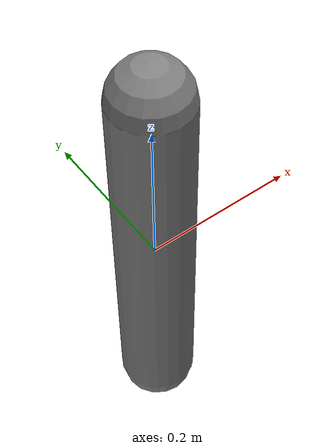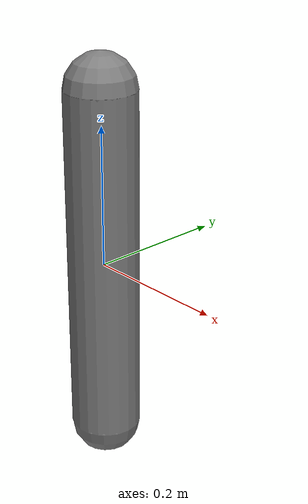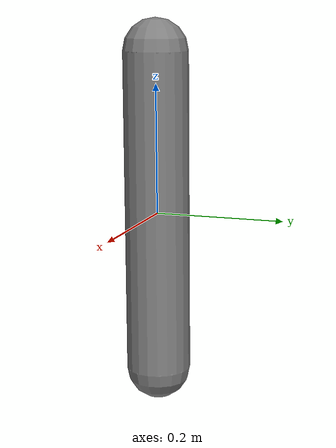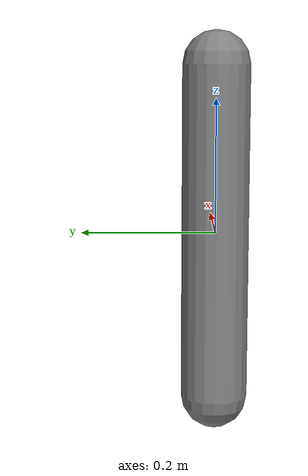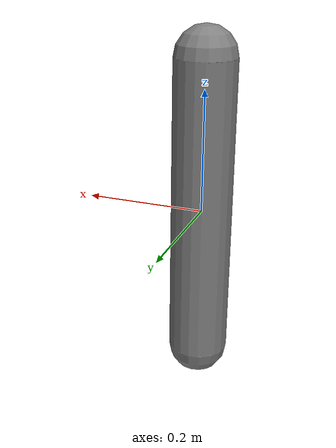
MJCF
<mujoco model="actuated">
            <option gravity="0 0 -9.81" timestep="0.001"/>
            <worldbody>
                <body name="arm" pos="0 0 0">
                    <joint name="shoulder" type="hinge" axis="0 1 0"/>
                    <geom type="capsule" size="0.05 0.25" mass="1.0"/>
                </body>
            </worldbody>
            <actuator>
                <motor name="motor1" joint="shoulder" gear="10"/>
            </actuator>
        </mujoco>
